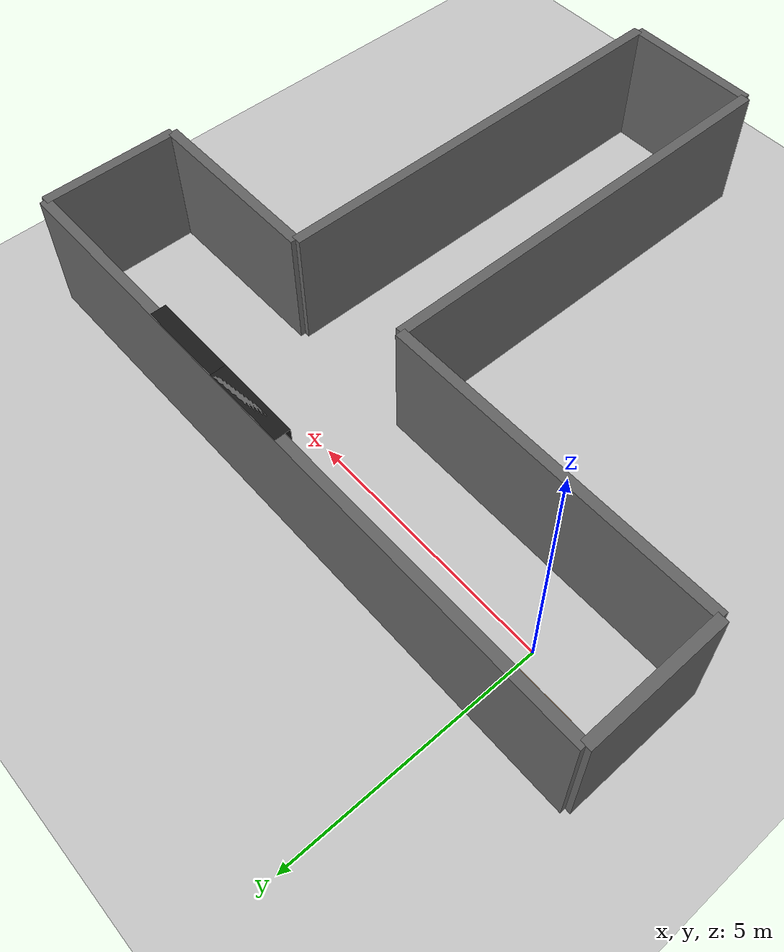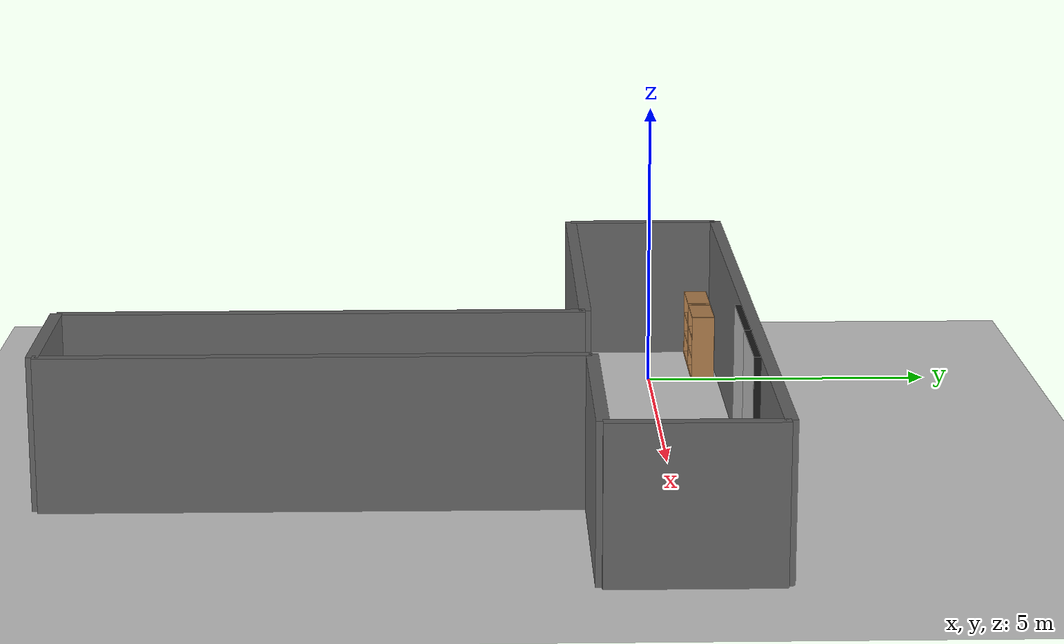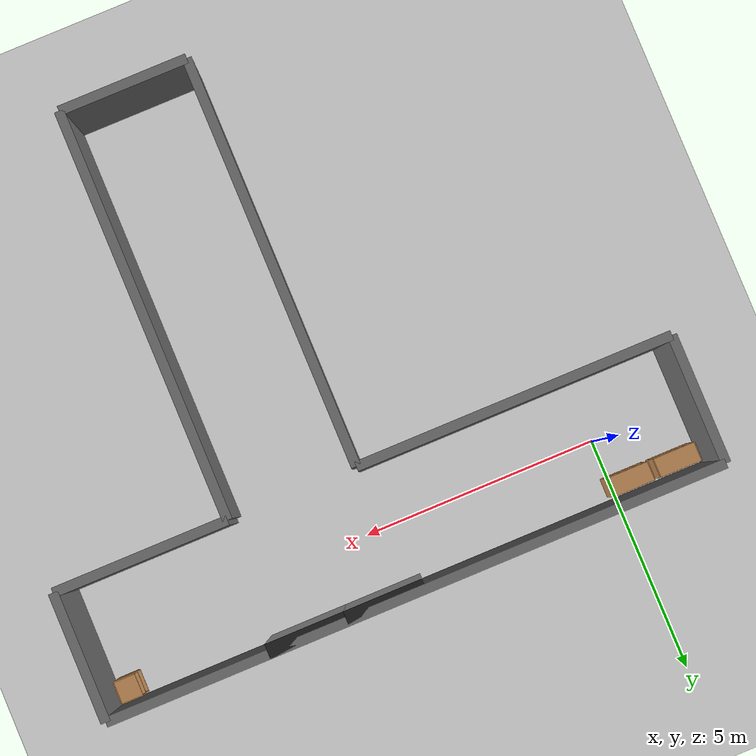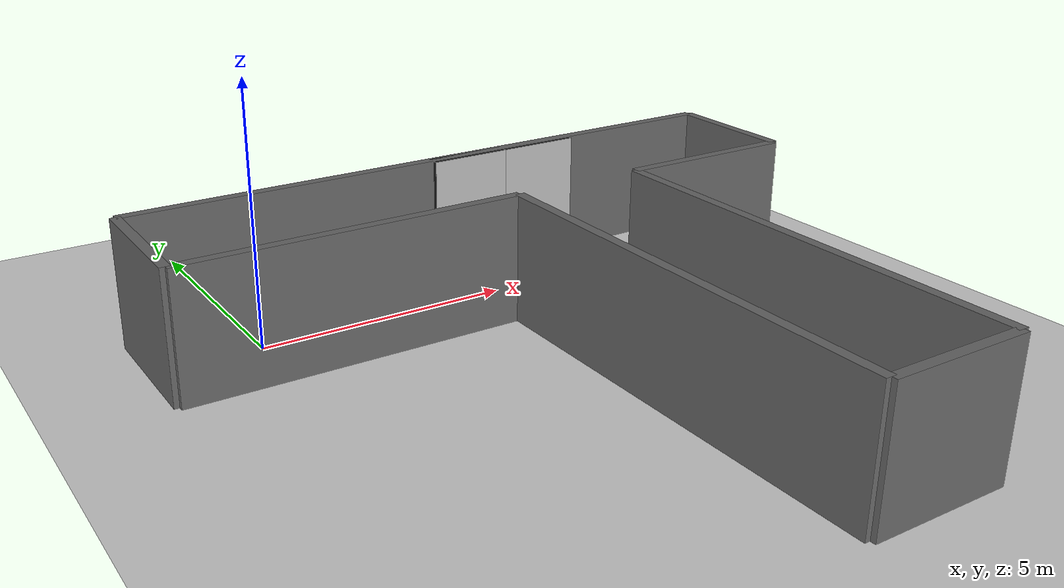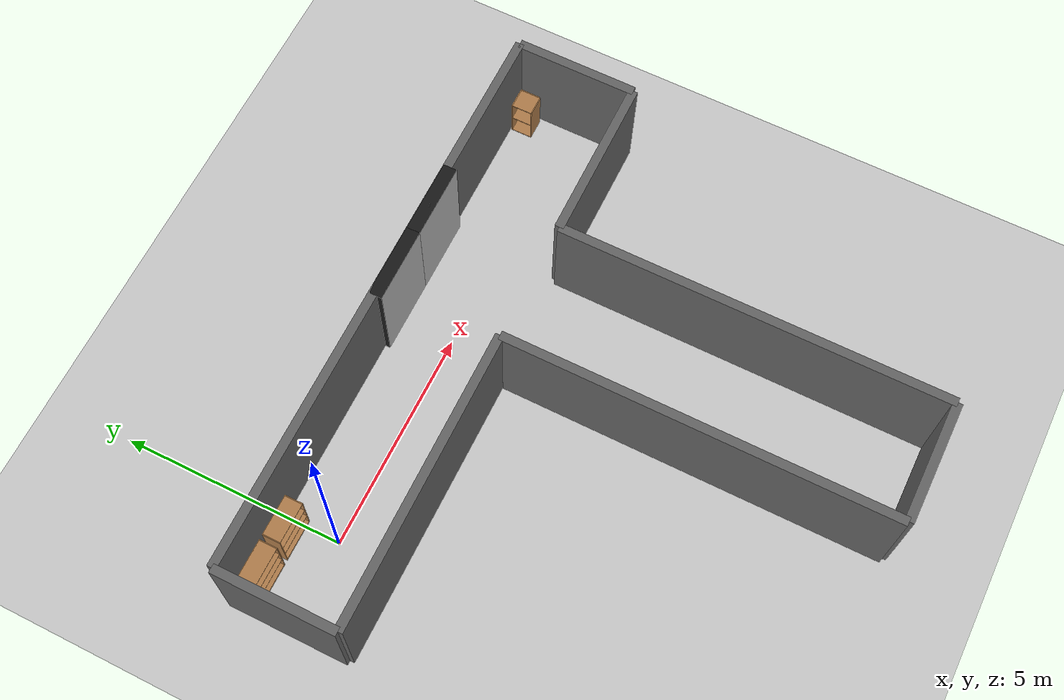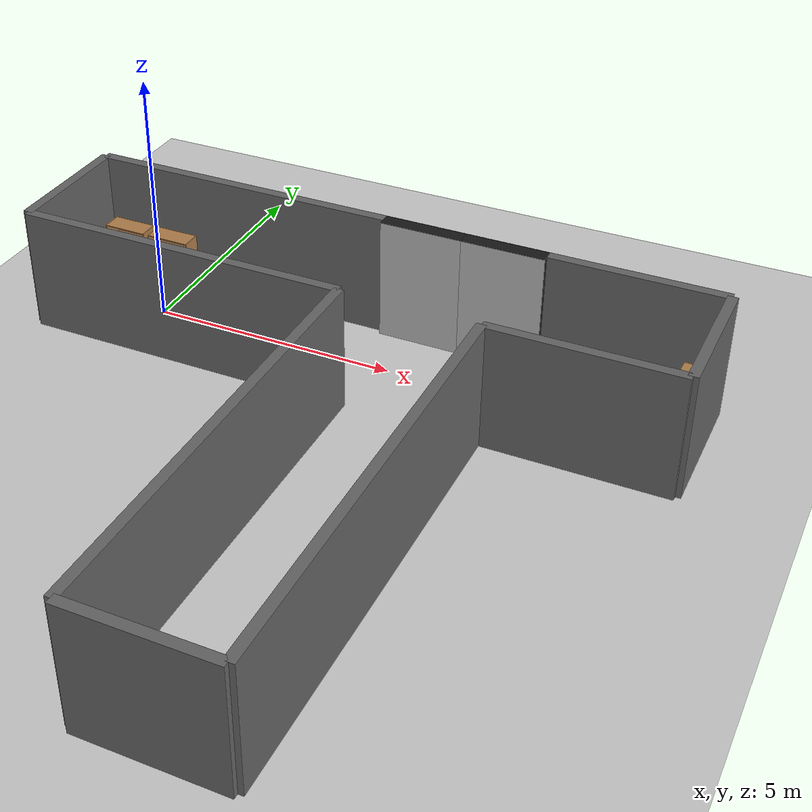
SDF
<sdf version="1.7">
 <world name="corridor">
  <plugin name="ActorPosesPlugin" filename="libActorPosesPlugin.so"/>
  <physics type="ode">
   <max_step_size>0.004</max_step_size>
   <real_time_update_rate>250</real_time_update_rate>
   <real_time_factor>1</real_time_factor>
  </physics>
  <gravity>0 0 -9.8</gravity>
  <scene><ambient>0.6 0.6 0.6 1</ambient><background>0.7 0.7 0.7 1</background><shadows>0</shadows></scene>
  <light name="sun" type="directional">
   <cast_shadows>0</cast_shadows>
   <pose>0 0 10 0 -0 0</pose>
   <diffuse>0.9 0.9 0.9 1</diffuse>
   <specular>0.1 0.1 0.1 1</specular>
   <direction>-0.5 0.1 -0.9</direction>
   <attenuation><range>10</range></attenuation>
   <spot><inner_angle>0</inner_angle><outer_angle>0</outer_angle><falloff>0</falloff></spot>
  </light>
  <model name="wall_top">
   <static>1</static>
   <pose>4.5 1.35 1.25 0 -0 0</pose>
   <link name="link">
    <collision name="collision"><geometry><box><size>13 0.2 2.5</size></box></geometry></collision>
    <visual name="visual">
     <geometry><box><size>13 0.2 2.5</size></box></geometry>
     <material><ambient>0.4 0.4 0.4 1</ambient><diffuse>0.4 0.4 0.4 1</diffuse></material>
    </visual>
   </link>
  </model>
  <model name="wall_bottom_left">
   <static>1</static>
   <pose>1.325 -1.35 1.25 0 -0 0</pose>
   <link name="link">
    <collision name="collision"><geometry><box><size>6.65 0.2 2.5</size></box></geometry></collision>
    <visual name="visual">
     <geometry><box><size>6.65 0.2 2.5</size></box></geometry>
     <material><ambient>0.4 0.4 0.4 1</ambient><diffuse>0.4 0.4 0.4 1</diffuse></material>
    </visual>
   </link>
  </model>
  <model name="wall_bottom_right">
   <static>1</static>
   <pose>9.175 -1.35 1.25 0 -0 0</pose>
   <link name="link">
    <collision name="collision"><geometry><box><size>3.65 0.2 2.5</size></box></geometry></collision>
    <visual name="visual">
     <geometry><box><size>3.65 0.2 2.5</size></box></geometry>
     <material><ambient>0.4 0.4 0.4 1</ambient><diffuse>0.4 0.4 0.4 1</diffuse></material>
    </visual>
   </link>
  </model>
  <model name="wall_end_left">
   <static>1</static>
   <pose>-2 0 1.25 0 -0 0</pose>
   <link name="link">
    <collision name="collision"><geometry><box><size>0.2 2.7 2.5</size></box></geometry></collision>
    <visual name="visual">
     <geometry><box><size>0.2 2.7 2.5</size></box></geometry>
     <material><ambient>0.4 0.4 0.4 1</ambient><diffuse>0.4 0.4 0.4 1</diffuse></material>
    </visual>
   </link>
  </model>
  <model name="wall_end_right">
   <static>1</static>
   <pose>11 0 1.25 0 -0 0</pose>
   <link name="link">
    <collision name="collision"><geometry><box><size>0.2 2.7 2.5</size></box></geometry></collision>
    <visual name="visual">
     <geometry><box><size>0.2 2.7 2.5</size></box></geometry>
     <material><ambient>0.4 0.4 0.4 1</ambient><diffuse>0.4 0.4 0.4 1</diffuse></material>
    </visual>
   </link>
  </model>
  <model name="wall_vert_left">
   <static>1</static>
   <pose>4.65 -5.675 1.25 0 -0 0</pose>
   <link name="link">
    <collision name="collision"><geometry><box><size>0.2 8.65 2.5</size></box></geometry></collision>
    <visual name="visual">
     <geometry><box><size>0.2 8.65 2.5</size></box></geometry>
     <material><ambient>0.4 0.4 0.4 1</ambient><diffuse>0.4 0.4 0.4 1</diffuse></material>
    </visual>
   </link>
  </model>
  <model name="wall_vert_right">
   <static>1</static>
   <pose>7.35 -5.675 1.25 0 -0 0</pose>
   <link name="link">
    <collision name="collision"><geometry><box><size>0.2 8.65 2.5</size></box></geometry></collision>
    <visual name="visual">
     <geometry><box><size>0.2 8.65 2.5</size></box></geometry>
     <material><ambient>0.4 0.4 0.4 1</ambient><diffuse>0.4 0.4 0.4 1</diffuse></material>
    </visual>
   </link>
  </model>
  <model name="wall_vert_bottom">
   <static>1</static>
   <pose>6 -10 1.25 0 -0 0</pose>
   <link name="link">
    <collision name="collision"><geometry><box><size>2.7 0.2 2.5</size></box></geometry></collision>
    <visual name="visual">
     <geometry><box><size>2.7 0.2 2.5</size></box></geometry>
     <material><ambient>0.4 0.4 0.4 1</ambient><diffuse>0.4 0.4 0.4 1</diffuse></material>
    </visual>
   </link>
  </model>
  <magnetic_field>6e-06 2.3e-05 -4.2e-05</magnetic_field>
  <atmosphere type="adiabatic"/>
  <spherical_coordinates>
   <surface_model>EARTH_WGS84</surface_model>
   <latitude_deg>0</latitude_deg>
   <longitude_deg>0</longitude_deg>
   <elevation>0</elevation>
   <heading_deg>0</heading_deg>
  </spherical_coordinates>
  <model name="poster_0">
   <link name="Wall_0">
    <pose>-4.7604 -4.48691 0 0 -0 0</pose>
    <visual name="Wall_0_Visual">
     <pose>0 0 1.25 0 -0 0</pose>
     <geometry><box><size>1.65 0.3 2.5</size></box></geometry>
     <material>
      <ambient>0.1 0.1 0.1 1</ambient>
      <shader type="pixel"/>
      <script><name>ModelPreview_1::Wall_0::Wall_0_Visual_MATERIAL_</name><uri>__default__</uri></script>
     </material>
     <meta><layer>0</layer></meta>
    </visual>
    <visual name="Poster_Face_Visual">
     <pose>0 0.151 1.25 0 -0 0</pose>
     <geometry><box><size>1.65 0.001 2.5</size></box></geometry>
     <material>
      <script>
       <uri>model://poster/materials/scripts/poster.material</uri>
       <uri>model://poster/materials/textures/poster.png</uri>
       <name>Poster/Image</name>
      </script>
      <shader type="pixel"/>
     </material>
    </visual>
    <visual name="Poster_Back_Visual">
     <pose>0 -0.151 1.25 0 -0 3.14159</pose>
     <geometry><box><size>1.65 0.001 2.5</size></box></geometry>
     <material>
      <script>
       <uri>model://poster/materials/scripts/poster.material</uri>
       <uri>model://poster/materials/textures/poster.png</uri>
       <name>Poster/Image</name>
      </script>
      <shader type="pixel"/>
     </material>
    </visual>
    <collision name="Wall_0_Collision">
     <pose>0 0 1.25 0 -0 0</pose>
     <geometry><box><size>1.65 0.3 2.5</size></box></geometry>
     <surface>
      <friction>
       <ode><mu>1</mu><mu2>1</mu2><fdir1>0 0 0</fdir1><slip1>0</slip1><slip2>0</slip2></ode>
       <torsional>
        <coefficient>1</coefficient>
        <patch_radius>0</patch_radius>
        <surface_radius>0</surface_radius>
        <use_patch_radius>1</use_patch_radius>
        <ode><slip>0</slip></ode>
       </torsional>
      </friction>
      <bounce><restitution_coefficient>0</restitution_coefficient><threshold>1e+06</threshold></bounce>
      <contact>
       <collide_without_contact>0</collide_without_contact>
       <collide_without_contact_bitmask>1</collide_without_contact_bitmask>
       <collide_bitmask>1</collide_bitmask>
       <ode>
        <soft_cfm>0</soft_cfm>
        <soft_erp>0.2</soft_erp>
        <kp>1e+13</kp>
        <kd>1</kd>
        <max_vel>0.01</max_vel>
        <min_depth>0</min_depth>
       </ode>
       <bullet>
        <split_impulse>1</split_impulse>
        <split_impulse_penetration_threshold>-0.01</split_impulse_penetration_threshold>
        <soft_cfm>0</soft_cfm>
        <soft_erp>0.2</soft_erp>
        <kp>1e+13</kp>
        <kd>1</kd>
       </bullet>
      </contact>
     </surface>
    </collision>
   </link>
   <static>1</static>
   <pose>9.89372 5.77585 0 0 -0 0</pose>
  </model>
  <model name="poster_1">
   <link name="Wall_0">
    <pose>-4.7604 -4.48691 0 0 -0 0</pose>
    <visual name="Wall_0_Visual">
     <pose>0 0 1.25 0 -0 0</pose>
     <geometry><box><size>1.65 0.3 2.5</size></box></geometry>
     <material>
      <ambient>0.1 0.1 0.1 1</ambient>
      <shader type="pixel"/>
      <script><name>ModelPreview_1::Wall_0::Wall_0_Visual_MATERIAL_</name><uri>__default__</uri></script>
     </material>
     <meta><layer>0</layer></meta>
    </visual>
    <visual name="Poster_Face_Visual">
     <pose>0 0.151 1.25 0 -0 0</pose>
     <geometry><box><size>1.65 0.001 2.5</size></box></geometry>
     <material>
      <script>
       <uri>model://poster/materials/scripts/poster.material</uri>
       <uri>model://poster/materials/textures/poster.png</uri>
       <name>Poster/Image</name>
      </script>
      <shader type="pixel"/>
     </material>
    </visual>
    <visual name="Poster_Back_Visual">
     <pose>0 -0.151 1.25 0 -0 3.14159</pose>
     <geometry><box><size>1.65 0.001 2.5</size></box></geometry>
     <material>
      <script>
       <uri>model://poster/materials/scripts/poster.material</uri>
       <uri>model://poster/materials/textures/poster.png</uri>
       <name>Poster/Image</name>
      </script>
      <shader type="pixel"/>
     </material>
    </visual>
    <collision name="Wall_0_Collision">
     <pose>0 0 1.25 0 -0 0</pose>
     <geometry><box><size>1.65 0.3 2.5</size></box></geometry>
     <surface>
      <friction>
       <ode><mu>1</mu><mu2>1</mu2><fdir1>0 0 0</fdir1><slip1>0</slip1><slip2>0</slip2></ode>
       <torsional>
        <coefficient>1</coefficient>
        <patch_radius>0</patch_radius>
        <surface_radius>0</surface_radius>
        <use_patch_radius>1</use_patch_radius>
        <ode><slip>0</slip></ode>
       </torsional>
      </friction>
      <bounce><restitution_coefficient>0</restitution_coefficient><threshold>1e+06</threshold></bounce>
      <contact>
       <collide_without_contact>0</collide_without_contact>
       <collide_without_contact_bitmask>1</collide_without_contact_bitmask>
       <collide_bitmask>1</collide_bitmask>
       <ode>
        <soft_cfm>0</soft_cfm>
        <soft_erp>0.2</soft_erp>
        <kp>1e+13</kp>
        <kd>1</kd>
        <max_vel>0.01</max_vel>
        <min_depth>0</min_depth>
       </ode>
       <bullet>
        <split_impulse>1</split_impulse>
        <split_impulse_penetration_threshold>-0.01</split_impulse_penetration_threshold>
        <soft_cfm>0</soft_cfm>
        <soft_erp>0.2</soft_erp>
        <kp>1e+13</kp>
        <kd>1</kd>
       </bullet>
      </contact>
     </surface>
    </collision>
   </link>
   <static>1</static>
   <pose>11.5373 5.77499 0 0 -0 0</pose>
  </model>
  <model name="ground_plane">
   <static>1</static>
   <link name="link">
    <collision name="collision">
     <geometry><plane><normal>0 0 1</normal><size>100 100</size></plane></geometry>
     <surface>
      <contact><collide_bitmask>65535</collide_bitmask></contact>
      <friction><ode><mu>100</mu><mu2>50</mu2></ode></friction>
     </surface>
    </collision>
    <visual name="visual">
     <cast_shadows>0</cast_shadows>
     <geometry><plane><normal>0 0 1</normal><size>100 100</size></plane></geometry>
     <material>
      <script><uri>file://media/materials/scripts/gazebo.material</uri><name>Gazebo/Grey</name></script>
     </material>
    </visual>
   </link>
   <pose>7.17331 -0.156415 0 0 -0 0</pose>
  </model>
  <model name="cabinet">
   <static>1</static>
   <link name="cabinet_bottom_plate">
    <inertial>
     <pose>0 0 -1 0 -0 0</pose>
     <inertia><ixx>2.05</ixx><ixy>0</ixy><ixz>0</ixz><iyy>2.05</iyy><iyz>0</iyz><izz>2.05</izz></inertia>
     <mass>25</mass>
    </inertial>
    <collision name="cabinet_bottom_plate_geom">
     <pose>0 0 0.01 0 -0 0</pose>
     <geometry><box><size>0.45 0.45 0.02</size></box></geometry>
    </collision>
    <visual name="cabinet_bottom_plate_geom_visual">
     <pose>0 0 0.01 0 -0 0</pose>
     <geometry><box><size>0.45 0.45 0.02</size></box></geometry>
     <material>
      <script><uri>file://media/materials/scripts/gazebo.material</uri><name>Gazebo/Wood</name></script>
     </material>
    </visual>
    <collision name="cabinet_bottom_plate_geom_cabinet_back_plate">
     <pose>0.235 0 0.51 0 -0 0</pose>
     <geometry><box><size>0.02 0.45 1.02</size></box></geometry>
    </collision>
    <visual name="cabinet_bottom_plate_geom_cabinet_back_plate_visual">
     <pose>0.235 0 0.51 0 -0 0</pose>
     <geometry><box><size>0.02 0.45 1.02</size></box></geometry>
     <material>
      <script><uri>file://media/materials/scripts/gazebo.material</uri><name>Gazebo/Wood</name></script>
     </material>
    </visual>
    <collision name="cabinet_bottom_plate_geom_cabinet_left_plate">
     <pose>0 0.235 0.51 0 -0 0</pose>
     <geometry><box><size>0.45 0.02 1.02</size></box></geometry>
    </collision>
    <visual name="cabinet_bottom_plate_geom_cabinet_left_plate_visual">
     <pose>0 0.235 0.51 0 -0 0</pose>
     <geometry><box><size>0.45 0.02 1.02</size></box></geometry>
     <material>
      <script><uri>file://media/materials/scripts/gazebo.material</uri><name>Gazebo/Wood</name></script>
     </material>
    </visual>
    <collision name="cabinet_bottom_plate_geom_cabinet_middle_plate">
     <pose>0 0 0.51 0 -0 0</pose>
     <geometry><box><size>0.45 0.45 0.02</size></box></geometry>
    </collision>
    <visual name="cabinet_bottom_plate_geom_cabinet_middle_plate_visual">
     <pose>0 0 0.51 0 -0 0</pose>
     <geometry><box><size>0.45 0.45 0.02</size></box></geometry>
     <material>
      <script><uri>file://media/materials/scripts/gazebo.material</uri><name>Gazebo/Wood</name></script>
     </material>
    </visual>
    <collision name="cabinet_bottom_plate_geom_cabinet_right_plate">
     <pose>0 -0.235 0.51 0 -0 0</pose>
     <geometry><box><size>0.45 0.02 1.02</size></box></geometry>
    </collision>
    <visual name="cabinet_bottom_plate_geom_cabinet_right_plate_visual">
     <pose>0 -0.235 0.51 0 -0 0</pose>
     <geometry><box><size>0.45 0.02 1.02</size></box></geometry>
     <material>
      <script><uri>file://media/materials/scripts/gazebo.material</uri><name>Gazebo/Wood</name></script>
     </material>
    </visual>
    <collision name="cabinet_bottom_plate_geom_cabinet_top_plate">
     <pose>0 0 1.01 0 -0 0</pose>
     <geometry><box><size>0.45 0.45 0.02</size></box></geometry>
    </collision>
    <visual name="cabinet_bottom_plate_geom_cabinet_top_plate_visual">
     <pose>0 0 1.01 0 -0 0</pose>
     <geometry><box><size>0.45 0.45 0.02</size></box></geometry>
     <material>
      <script><uri>file://media/materials/scripts/gazebo.material</uri><name>Gazebo/Wood</name></script>
     </material>
    </visual>
    <velocity_decay><linear>0</linear><angular>0</angular></velocity_decay>
   </link>
   <pose>10.579 0.977899 0 0 -0 0</pose>
  </model>
  <model name="bookshelf">
   <static>1</static>
   <link name="link">
    <inertial><mass>1</mass></inertial>
    <collision name="back">
     <pose>0 0.005 0.6 0 -0 0</pose>
     <geometry><box><size>0.9 0.01 1.2</size></box></geometry>
    </collision>
    <visual name="visual1">
     <pose>0 0.005 0.6 0 -0 0</pose>
     <geometry><box><size>0.9 0.01 1.2</size></box></geometry>
     <material>
      <script><uri>file://media/materials/scripts/gazebo.material</uri><name>Gazebo/Wood</name></script>
     </material>
    </visual>
    <collision name="left_side">
     <pose>0.45 -0.195 0.6 0 -0 0</pose>
     <geometry><box><size>0.02 0.4 1.2</size></box></geometry>
    </collision>
    <visual name="visual2">
     <pose>0.45 -0.195 0.6 0 -0 0</pose>
     <geometry><box><size>0.02 0.4 1.2</size></box></geometry>
     <material>
      <script><uri>file://media/materials/scripts/gazebo.material</uri><name>Gazebo/Wood</name></script>
     </material>
    </visual>
    <collision name="right_side">
     <pose>-0.45 -0.195 0.6 0 -0 0</pose>
     <geometry><box><size>0.02 0.4 1.2</size></box></geometry>
    </collision>
    <visual name="visual3">
     <pose>-0.45 -0.195 0.6 0 -0 0</pose>
     <geometry><box><size>0.02 0.4 1.2</size></box></geometry>
     <material>
      <script><uri>file://media/materials/scripts/gazebo.material</uri><name>Gazebo/Wood</name></script>
     </material>
    </visual>
    <collision name="bottom">
     <pose>0 -0.195 0.03 0 -0 0</pose>
     <geometry><box><size>0.88 0.4 0.06</size></box></geometry>
    </collision>
    <visual name="visual4">
     <pose>0 -0.195 0.03 0 -0 0</pose>
     <geometry><box><size>0.88 0.4 0.06</size></box></geometry>
     <material>
      <script><uri>file://media/materials/scripts/gazebo.material</uri><name>Gazebo/Wood</name></script>
     </material>
    </visual>
    <collision name="top">
     <pose>0 -0.195 1.19 0 -0 0</pose>
     <geometry><box><size>0.88 0.4 0.02</size></box></geometry>
    </collision>
    <visual name="visual5">
     <pose>0 -0.195 1.19 0 -0 0</pose>
     <geometry><box><size>0.88 0.4 0.02</size></box></geometry>
     <material>
      <script><uri>file://media/materials/scripts/gazebo.material</uri><name>Gazebo/Wood</name></script>
     </material>
    </visual>
    <collision name="low_shelf">
     <pose>0 -0.195 0.43 0 -0 0</pose>
     <geometry><box><size>0.88 0.4 0.02</size></box></geometry>
    </collision>
    <visual name="visual6">
     <pose>0 -0.195 0.43 0 -0 0</pose>
     <geometry><box><size>0.88 0.4 0.02</size></box></geometry>
     <material>
      <script><uri>file://media/materials/scripts/gazebo.material</uri><name>Gazebo/Wood</name></script>
     </material>
    </visual>
    <collision name="high_shelf">
     <pose>0 -0.195 0.8 0 -0 0</pose>
     <geometry><box><size>0.88 0.4 0.02</size></box></geometry>
    </collision>
    <visual name="visual7">
     <pose>0 -0.195 0.8 0 -0 0</pose>
     <geometry><box><size>0.88 0.4 0.02</size></box></geometry>
     <material>
      <script><uri>file://media/materials/scripts/gazebo.material</uri><name>Gazebo/Wood</name></script>
     </material>
    </visual>
    <velocity_decay><linear>0</linear><angular>0</angular></velocity_decay>
   </link>
   <pose>-1.32653 1.17165 0 0 -0 0</pose>
  </model>
  <model name="bookshelf_0">
   <static>1</static>
   <link name="link">
    <inertial><mass>1</mass></inertial>
    <collision name="back">
     <pose>0 0.005 0.6 0 -0 0</pose>
     <geometry><box><size>0.9 0.01 1.2</size></box></geometry>
    </collision>
    <visual name="visual1">
     <pose>0 0.005 0.6 0 -0 0</pose>
     <geometry><box><size>0.9 0.01 1.2</size></box></geometry>
     <material>
      <script><uri>file://media/materials/scripts/gazebo.material</uri><name>Gazebo/Wood</name></script>
     </material>
    </visual>
    <collision name="left_side">
     <pose>0.45 -0.195 0.6 0 -0 0</pose>
     <geometry><box><size>0.02 0.4 1.2</size></box></geometry>
    </collision>
    <visual name="visual2">
     <pose>0.45 -0.195 0.6 0 -0 0</pose>
     <geometry><box><size>0.02 0.4 1.2</size></box></geometry>
     <material>
      <script><uri>file://media/materials/scripts/gazebo.material</uri><name>Gazebo/Wood</name></script>
     </material>
    </visual>
    <collision name="right_side">
     <pose>-0.45 -0.195 0.6 0 -0 0</pose>
     <geometry><box><size>0.02 0.4 1.2</size></box></geometry>
    </collision>
    <visual name="visual3">
     <pose>-0.45 -0.195 0.6 0 -0 0</pose>
     <geometry><box><size>0.02 0.4 1.2</size></box></geometry>
     <material>
      <script><uri>file://media/materials/scripts/gazebo.material</uri><name>Gazebo/Wood</name></script>
     </material>
    </visual>
    <collision name="bottom">
     <pose>0 -0.195 0.03 0 -0 0</pose>
     <geometry><box><size>0.88 0.4 0.06</size></box></geometry>
    </collision>
    <visual name="visual4">
     <pose>0 -0.195 0.03 0 -0 0</pose>
     <geometry><box><size>0.88 0.4 0.06</size></box></geometry>
     <material>
      <script><uri>file://media/materials/scripts/gazebo.material</uri><name>Gazebo/Wood</name></script>
     </material>
    </visual>
    <collision name="top">
     <pose>0 -0.195 1.19 0 -0 0</pose>
     <geometry><box><size>0.88 0.4 0.02</size></box></geometry>
    </collision>
    <visual name="visual5">
     <pose>0 -0.195 1.19 0 -0 0</pose>
     <geometry><box><size>0.88 0.4 0.02</size></box></geometry>
     <material>
      <script><uri>file://media/materials/scripts/gazebo.material</uri><name>Gazebo/Wood</name></script>
     </material>
    </visual>
    <collision name="low_shelf">
     <pose>0 -0.195 0.43 0 -0 0</pose>
     <geometry><box><size>0.88 0.4 0.02</size></box></geometry>
    </collision>
    <visual name="visual6">
     <pose>0 -0.195 0.43 0 -0 0</pose>
     <geometry><box><size>0.88 0.4 0.02</size></box></geometry>
     <material>
      <script><uri>file://media/materials/scripts/gazebo.material</uri><name>Gazebo/Wood</name></script>
     </material>
    </visual>
    <collision name="high_shelf">
     <pose>0 -0.195 0.8 0 -0 0</pose>
     <geometry><box><size>0.88 0.4 0.02</size></box></geometry>
    </collision>
    <visual name="visual7">
     <pose>0 -0.195 0.8 0 -0 0</pose>
     <geometry><box><size>0.88 0.4 0.02</size></box></geometry>
     <material>
      <script><uri>file://media/materials/scripts/gazebo.material</uri><name>Gazebo/Wood</name></script>
     </material>
    </visual>
    <velocity_decay><linear>0</linear><angular>0</angular></velocity_decay>
   </link>
   <pose>-0.31017 1.17165 0 0 -0 0</pose>
  </model>
 </world>
</sdf>
